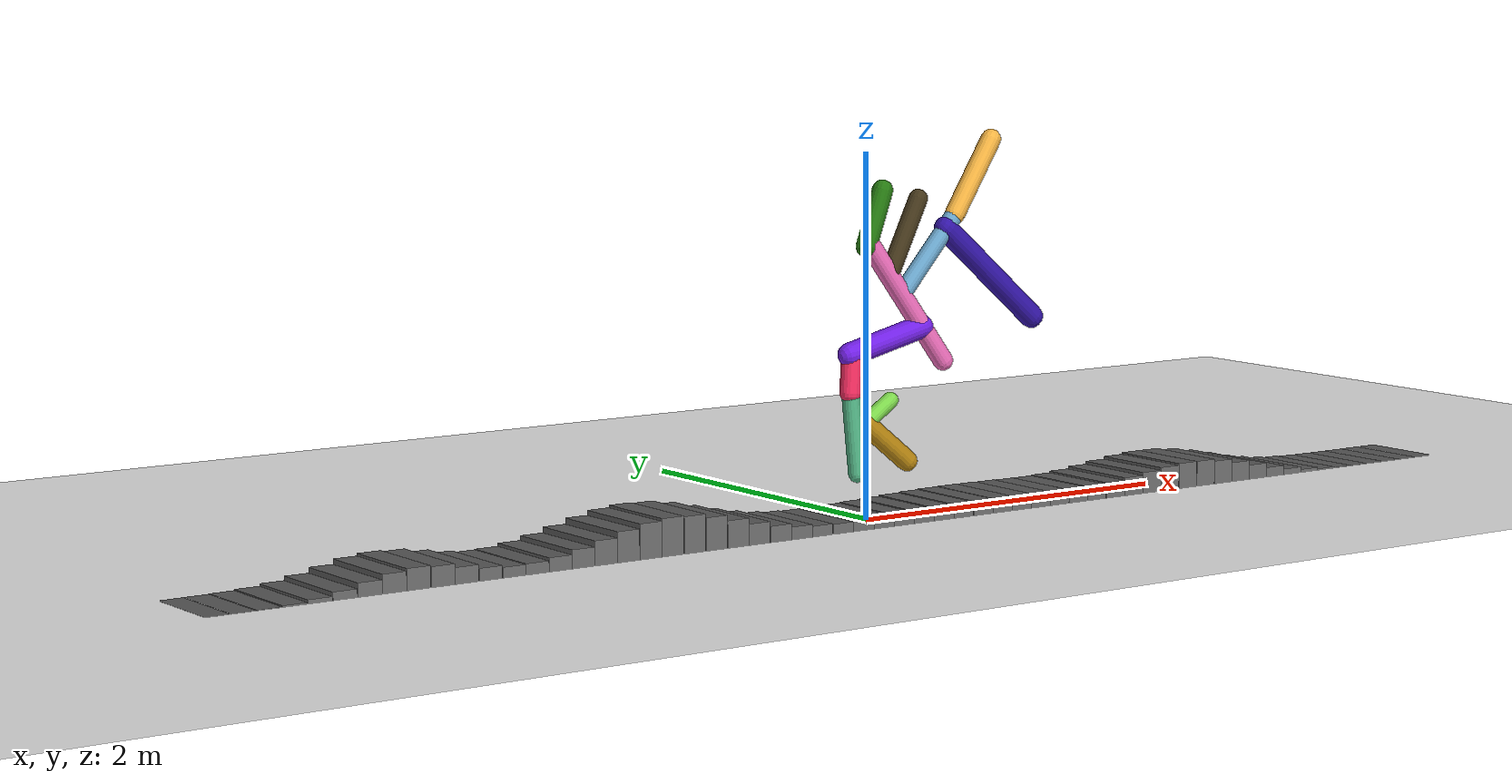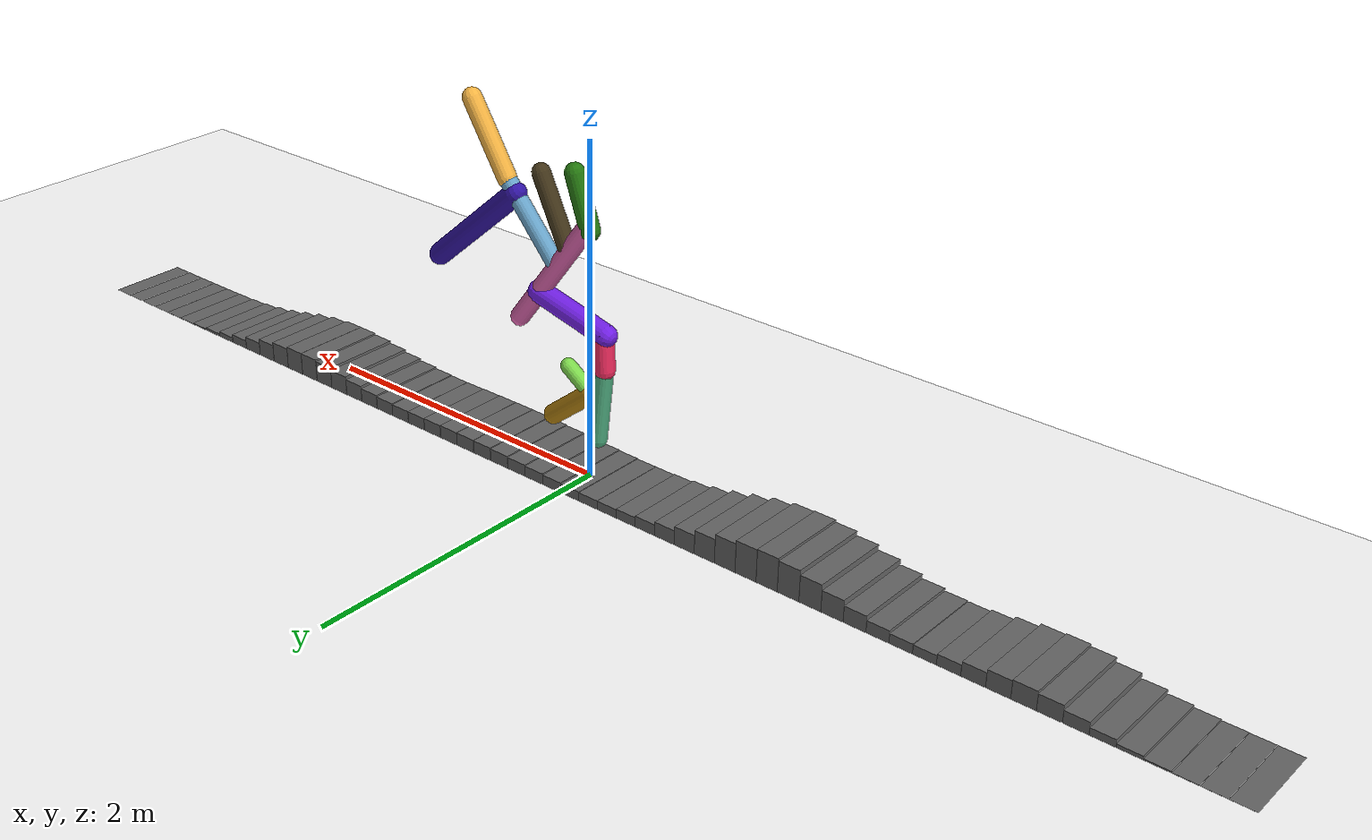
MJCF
<mujoco model="morphology">
  <option timestep="0.01"/>
  <default>
    <default class="/"/>
    <default class="0/"/>
    <default class="0/1/"/>
    <default class="0/1/2/"/>
    <default class="0/1/3/"/>
    <default class="0/1/3/4/"/>
    <default class="0/1/3/5/"/>
    <default class="0/1/6/"/>
    <default class="0/1/6/7/"/>
    <default class="0/1/6/7/8/"/>
    <default class="0/1/6/7/8/9/"/>
    <default class="0/1/6/7/8/9/10/"/>
  </default>
  <asset>
    <texture name="texplane" type="2d" builtin="checker" rgb1="0.10000000000000001 0.20000000000000001 0.29999999999999999" rgb2="0.20000000000000001 0.29999999999999999 0.40000000000000002" width="300" height="300"/>
    <material name="MatPlane" class="/" texture="texplane" texrepeat="20 20" specular="1.0" shininess="1.0" reflectance="0.5"/>
  </asset>
  <worldbody>
    <light name="//unnamed_light_0" class="/" directional="true" pos="0 0 1.5" dir="0 0 -1.3" cutoff="100.0" exponent="1.0" diffuse="1 1 1" specular="0.10000000000000001 0.10000000000000001 0.10000000000000001"/>
    <geom name="ground" class="/" type="plane" size="15 15 0.5" material="MatPlane" rgba="1 1 1 1"/>
    <geom name="terrain0" class="/" type="box" size="0.066666666666666666 0.25 9.4927636727124769e-05" rgba="0.40000000000000002 0.40000000000000002 0.40000000000000002 1" pos="-4 0 9.4927636727124769e-05"/>
    <geom name="terrain1" class="/" type="box" size="0.066666666666666666 0.25 0.00038126380193443781" rgba="0.40000000000000002 0.40000000000000002 0.40000000000000002 1" pos="-3.8644067796610169 0 0.00038126380193443781"/>
    <geom name="terrain2" class="/" type="box" size="0.066666666666666666 0.25 0.0013651614196386642" rgba="0.40000000000000002 0.40000000000000002 0.40000000000000002 1" pos="-3.7288135593220337 0 0.0013651614196386642"/>
    <geom name="terrain3" class="/" type="box" size="0.066666666666666666 0.25 0.0041325080400187704" rgba="0.40000000000000002 0.40000000000000002 0.40000000000000002 1" pos="-3.593220338983051 0 0.0041325080400187704"/>
    <geom name="terrain4" class="/" type="box" size="0.066666666666666666 0.25 0.010348070802014379" rgba="0.40000000000000002 0.40000000000000002 0.40000000000000002 1" pos="-3.4576271186440679 0 0.010348070802014379"/>
    <geom name="terrain5" class="/" type="box" size="0.066666666666666666 0.25 0.021253802310680227" rgba="0.40000000000000002 0.40000000000000002 0.40000000000000002 1" pos="-3.3220338983050848 0 0.021253802310680227"/>
    <geom name="terrain6" class="/" type="box" size="0.066666666666666666 0.25 0.035705981210384409" rgba="0.40000000000000002 0.40000000000000002 0.40000000000000002 1" pos="-3.1864406779661016 0 0.035705981210384409"/>
    <geom name="terrain7" class="/" type="box" size="0.066666666666666666 0.25 0.049093607162200313" rgba="0.40000000000000002 0.40000000000000002 0.40000000000000002 1" pos="-3.0508474576271185 0 0.049093607162200313"/>
    <geom name="terrain8" class="/" type="box" size="0.066666666666666666 0.25 0.05549637422527242" rgba="0.40000000000000002 0.40000000000000002 0.40000000000000002 1" pos="-2.9152542372881358 0 0.05549637422527242"/>
    <geom name="terrain9" class="/" type="box" size="0.066666666666666666 0.25 0.052249639879623701" rgba="0.40000000000000002 0.40000000000000002 0.40000000000000002 1" pos="-2.7796610169491522 0 0.052249639879623701"/>
    <geom name="terrain10" class="/" type="box" size="0.066666666666666666 0.25 0.042407659015549479" rgba="0.40000000000000002 0.40000000000000002 0.40000000000000002 1" pos="-2.6440677966101696 0 0.042407659015549479"/>
    <geom name="terrain11" class="/" type="box" size="0.066666666666666666 0.25 0.032327138873683207" rgba="0.40000000000000002 0.40000000000000002 0.40000000000000002 1" pos="-2.5084745762711864 0 0.032327138873683207"/>
    <geom name="terrain12" class="/" type="box" size="0.066666666666666666 0.25 0.027156030556583746" rgba="0.40000000000000002 0.40000000000000002 0.40000000000000002 1" pos="-2.3728813559322033 0 0.027156030556583746"/>
    <geom name="terrain13" class="/" type="box" size="0.066666666666666666 0.25 0.028696801412685546" rgba="0.40000000000000002 0.40000000000000002 0.40000000000000002 1" pos="-2.2372881355932206 0 0.028696801412685546"/>
    <geom name="terrain14" class="/" type="box" size="0.066666666666666666 0.25 0.036375258301861668" rgba="0.40000000000000002 0.40000000000000002 0.40000000000000002 1" pos="-2.101694915254237 0 0.036375258301861668"/>
    <geom name="terrain15" class="/" type="box" size="0.066666666666666666 0.25 0.048842951862182425" rgba="0.40000000000000002 0.40000000000000002 0.40000000000000002 1" pos="-1.9661016949152543 0 0.048842951862182425"/>
    <geom name="terrain16" class="/" type="box" size="0.066666666666666666 0.25 0.064389424716469051" rgba="0.40000000000000002 0.40000000000000002 0.40000000000000002 1" pos="-1.8305084745762712 0 0.064389424716469051"/>
    <geom name="terrain17" class="/" type="box" size="0.066666666666666666 0.25 0.08046402939919084" rgba="0.40000000000000002 0.40000000000000002 0.40000000000000002 1" pos="-1.6949152542372881 0 0.08046402939919084"/>
    <geom name="terrain18" class="/" type="box" size="0.066666666666666666 0.25 0.093533788087297981" rgba="0.40000000000000002 0.40000000000000002 0.40000000000000002 1" pos="-1.5593220338983049 0 0.093533788087297981"/>
    <geom name="terrain19" class="/" type="box" size="0.066666666666666666 0.25 0.10000000000000001" rgba="0.40000000000000002 0.40000000000000002 0.40000000000000002 1" pos="-1.4237288135593222 0 0.10000000000000001"/>
    <geom name="terrain20" class="/" type="box" size="0.066666666666666666 0.25 0.097809565702307422" rgba="0.40000000000000002 0.40000000000000002 0.40000000000000002 1" pos="-1.2881355932203391 0 0.097809565702307422"/>
    <geom name="terrain21" class="/" type="box" size="0.066666666666666666 0.25 0.087616953771730607" rgba="0.40000000000000002 0.40000000000000002 0.40000000000000002 1" pos="-1.152542372881356 0 0.087616953771730607"/>
    <geom name="terrain22" class="/" type="box" size="0.066666666666666666 0.25 0.072549328343770147" rgba="0.40000000000000002 0.40000000000000002 0.40000000000000002 1" pos="-1.0169491525423728 0 0.072549328343770147"/>
    <geom name="terrain23" class="/" type="box" size="0.066666666666666666 0.25 0.056689074890898764" rgba="0.40000000000000002 0.40000000000000002 0.40000000000000002 1" pos="-0.8813559322033897 0 0.056689074890898764"/>
    <geom name="terrain24" class="/" type="box" size="0.066666666666666666 0.25 0.043333085316772463" rgba="0.40000000000000002 0.40000000000000002 0.40000000000000002 1" pos="-0.74576271186440657 0 0.043333085316772463"/>
    <geom name="terrain25" class="/" type="box" size="0.066666666666666666 0.25 0.03406761269882691" rgba="0.40000000000000002 0.40000000000000002 0.40000000000000002 1" pos="-0.61016949152542388 0 0.03406761269882691"/>
    <geom name="terrain26" class="/" type="box" size="0.066666666666666666 0.25 0.028898933224964576" rgba="0.40000000000000002 0.40000000000000002 0.40000000000000002 1" pos="-0.47457627118644075 0 0.028898933224964576"/>
    <geom name="terrain27" class="/" type="box" size="0.066666666666666666 0.25 0.02696164446024206" rgba="0.40000000000000002 0.40000000000000002 0.40000000000000002 1" pos="-0.33898305084745761 0 0.02696164446024206"/>
    <geom name="terrain28" class="/" type="box" size="0.066666666666666666 0.25 0.027206838846849036" rgba="0.40000000000000002 0.40000000000000002 0.40000000000000002 1" pos="-0.20338983050847448 0 0.027206838846849036"/>
    <geom name="terrain29" class="/" type="box" size="0.066666666666666666 0.25 0.028776676429642007" rgba="0.40000000000000002 0.40000000000000002 0.40000000000000002 1" pos="-0.067796610169491345 0 0.028776676429642007"/>
    <geom name="terrain30" class="/" type="box" size="0.066666666666666666 0.25 0.031082606671439916" rgba="0.40000000000000002 0.40000000000000002 0.40000000000000002 1" pos="0.067796610169491345 0 0.031082606671439916"/>
    <geom name="terrain31" class="/" type="box" size="0.066666666666666666 0.25 0.033725254869113257" rgba="0.40000000000000002 0.40000000000000002 0.40000000000000002 1" pos="0.20338983050847492 0 0.033725254869113257"/>
    <geom name="terrain32" class="/" type="box" size="0.066666666666666666 0.25 0.036377022308784722" rgba="0.40000000000000002 0.40000000000000002 0.40000000000000002 1" pos="0.33898305084745761 0 0.036377022308784722"/>
    <geom name="terrain33" class="/" type="box" size="0.066666666666666666 0.25 0.03870001158149533" rgba="0.40000000000000002 0.40000000000000002 0.40000000000000002 1" pos="0.4745762711864403 0 0.03870001158149533"/>
    <geom name="terrain34" class="/" type="box" size="0.066666666666666666 0.25 0.040337715520321997" rgba="0.40000000000000002 0.40000000000000002 0.40000000000000002 1" pos="0.61016949152542388 0 0.040337715520321997"/>
    <geom name="terrain35" class="/" type="box" size="0.066666666666666666 0.25 0.040993706476980141" rgba="0.40000000000000002 0.40000000000000002 0.40000000000000002 1" pos="0.74576271186440657 0 0.040993706476980141"/>
    <geom name="terrain36" class="/" type="box" size="0.066666666666666666 0.25 0.040579715305346424" rgba="0.40000000000000002 0.40000000000000002 0.40000000000000002 1" pos="0.88135593220339015 0 0.040579715305346424"/>
    <geom name="terrain37" class="/" type="box" size="0.066666666666666666 0.25 0.039375462848010634" rgba="0.40000000000000002 0.40000000000000002 0.40000000000000002 1" pos="1.0169491525423728 0 0.039375462848010634"/>
    <geom name="terrain38" class="/" type="box" size="0.066666666666666666 0.25 0.038105586810940062" rgba="0.40000000000000002 0.40000000000000002 0.40000000000000002 1" pos="1.1525423728813555 0 0.038105586810940062"/>
    <geom name="terrain39" class="/" type="box" size="0.066666666666666666 0.25 0.037834540424447921" rgba="0.40000000000000002 0.40000000000000002 0.40000000000000002 1" pos="1.2881355932203391 0 0.037834540424447921"/>
    <geom name="terrain40" class="/" type="box" size="0.066666666666666666 0.25 0.039642371073211856" rgba="0.40000000000000002 0.40000000000000002 0.40000000000000002 1" pos="1.4237288135593218 0 0.039642371073211856"/>
    <geom name="terrain41" class="/" type="box" size="0.066666666666666666 0.25 0.044168327453589708" rgba="0.40000000000000002 0.40000000000000002 0.40000000000000002 1" pos="1.5593220338983054 0 0.044168327453589708"/>
    <geom name="terrain42" class="/" type="box" size="0.066666666666666666 0.25 0.05121673670567907" rgba="0.40000000000000002 0.40000000000000002 0.40000000000000002 1" pos="1.6949152542372881 0 0.05121673670567907"/>
    <geom name="terrain43" class="/" type="box" size="0.066666666666666666 0.25 0.059611244966457401" rgba="0.40000000000000002 0.40000000000000002 0.40000000000000002 1" pos="1.8305084745762707 0 0.059611244966457401"/>
    <geom name="terrain44" class="/" type="box" size="0.066666666666666666 0.25 0.067366557316932349" rgba="0.40000000000000002 0.40000000000000002 0.40000000000000002 1" pos="1.9661016949152543 0 0.067366557316932349"/>
    <geom name="terrain45" class="/" type="box" size="0.066666666666666666 0.25 0.072148650848288476" rgba="0.40000000000000002 0.40000000000000002 0.40000000000000002 1" pos="2.101694915254237 0 0.072148650848288476"/>
    <geom name="terrain46" class="/" type="box" size="0.066666666666666666 0.25 0.071968904068011194" rgba="0.40000000000000002 0.40000000000000002 0.40000000000000002 1" pos="2.2372881355932206 0 0.071968904068011194"/>
    <geom name="terrain47" class="/" type="box" size="0.066666666666666666 0.25 0.065971248775560501" rgba="0.40000000000000002 0.40000000000000002 0.40000000000000002 1" pos="2.3728813559322033 0 0.065971248775560501"/>
    <geom name="terrain48" class="/" type="box" size="0.066666666666666666 0.25 0.05495786493449744" rgba="0.40000000000000002 0.40000000000000002 0.40000000000000002 1" pos="2.5084745762711869 0 0.05495786493449744"/>
    <geom name="terrain49" class="/" type="box" size="0.066666666666666666 0.25 0.041224201099281134" rgba="0.40000000000000002 0.40000000000000002 0.40000000000000002 1" pos="2.6440677966101696 0 0.041224201099281134"/>
    <geom name="terrain50" class="/" type="box" size="0.066666666666666666 0.25 0.02763585189592533" rgba="0.40000000000000002 0.40000000000000002 0.40000000000000002 1" pos="2.7796610169491522 0 0.02763585189592533"/>
    <geom name="terrain51" class="/" type="box" size="0.066666666666666666 0.25 0.01646118409724465" rgba="0.40000000000000002 0.40000000000000002 0.40000000000000002 1" pos="2.9152542372881358 0 0.01646118409724465"/>
    <geom name="terrain52" class="/" type="box" size="0.066666666666666666 0.25 0.008673801545571699" rgba="0.40000000000000002 0.40000000000000002 0.40000000000000002 1" pos="3.0508474576271185 0 0.008673801545571699"/>
    <geom name="terrain53" class="/" type="box" size="0.066666666666666666 0.25 0.0040300930573957438" rgba="0.40000000000000002 0.40000000000000002 0.40000000000000002 1" pos="3.1864406779661021 0 0.0040300930573957438"/>
    <geom name="terrain54" class="/" type="box" size="0.066666666666666666 0.25 0.0016472624950169064" rgba="0.40000000000000002 0.40000000000000002 0.40000000000000002 1" pos="3.3220338983050848 0 0.0016472624950169064"/>
    <geom name="terrain55" class="/" type="box" size="0.066666666666666666 0.25 0.00059132529165083084" rgba="0.40000000000000002 0.40000000000000002 0.40000000000000002 1" pos="3.4576271186440675 0 0.00059132529165083084"/>
    <geom name="terrain56" class="/" type="box" size="0.066666666666666666 0.25 0.00018620505128557995" rgba="0.40000000000000002 0.40000000000000002 0.40000000000000002 1" pos="3.593220338983051 0 0.00018620505128557995"/>
    <geom name="terrain57" class="/" type="box" size="0.066666666666666666 0.25 5.1392457154675699e-05" rgba="0.40000000000000002 0.40000000000000002 0.40000000000000002 1" pos="3.7288135593220337 0 5.1392457154675699e-05"/>
    <geom name="terrain58" class="/" type="box" size="0.066666666666666666 0.25 1.2425458455688372e-05" rgba="0.40000000000000002 0.40000000000000002 0.40000000000000002 1" pos="3.8644067796610173 0 1.2425458455688372e-05"/>
    <geom name="terrain59" class="/" type="box" size="0.066666666666666666 0.25 2.6308709446004449e-06" rgba="0.40000000000000002 0.40000000000000002 0.40000000000000002 1" pos="4 0 2.6308709446004449e-06"/>
    <site name="body" class="/" size="9.9999999999999995e-07 9.9999999999999995e-07 9.9999999999999995e-07" pos="0 0 1.489284405708313"/>
    <body pos="0 0 1.489284405708313" name="0/">
      <joint name="0/rootx/" class="/" type="slide" axis="1 0 0" stiffness="0.0" armature="0.0" damping="0.0"/>
      <joint name="0/rootz/" class="/" type="slide" axis="0 0 1" stiffness="0.0" armature="0.0" damping="0.0"/>
      <joint name="0/rooty/" class="/" type="hinge" axis="0 1 0" stiffness="0.0" armature="0.0" damping="0.0"/>
      <geom name="0/geom" class="0/" type="capsule" contype="1" conaffinity="1" condim="3" size="0.057574631855701539" rgba="0.14769734868389828 0.47265997302033613 0.064785972761173038 1" friction="0.59999999999999998 0.10000000000000001 0.10000000000000001" fromto="0 0 0 0.10795725198494988 0 0.29875920607121653"/>
      <site name="0/end0" class="0/" size="0.0050000000000000001" pos="0.10795725198494988 0 0.29875920607121653"/>
      <site name="0/attach1" class="0/" size="9.9999999999999995e-07 9.9999999999999995e-07 9.9999999999999995e-07" pos="0.010103876894059428 0 0.027961310459544905"/>
      <body pos="0.010103876894059428 0 0.027961310459544905" name="0/1/">
        <joint name="0/1/joint/" class="0/" type="hinge" axis="0 1 0" limited="true" stiffness="100.0" range="-36.581196790596209 36.581196790596209" armature="0.2" damping="3.5"/>
        <geom name="0/1/geom" class="0/1/" type="capsule" contype="1" conaffinity="1" condim="3" size="0.056029525816455011" rgba="0.92409438783859355 0.42669969654018847 0.727538311890921 1" friction="0.59999999999999998 0.10000000000000001 0.10000000000000001" fromto="0 0 0 0.51219628905384429 0 -0.68675204724076622"/>
        <site name="0/1/end1" class="0/1/" size="0.0050000000000000001" pos="0.51219628905384429 0 -0.68675204724076622"/>
        <site name="0/1/attach2" class="0/1/" size="9.9999999999999995e-07 9.9999999999999995e-07 9.9999999999999995e-07" pos="0.14381850467422483 0 -0.19283164409210846"/>
        <body pos="0.14381850467422483 0 -0.19283164409210846" name="0/1/2/">
          <geom name="0/1/2/geom" class="0/1/2/" type="capsule" contype="1" conaffinity="1" condim="3" size="0.052884565477771546" rgba="0.266057053091038 0.21383281520856456 0.10436365738060494 1" friction="0.59999999999999998 0.10000000000000001 0.10000000000000001" fromto="0 0 0 0.19563090070035161 0 0.40563656954362504"/>
          <site name="0/1/2/end2" class="0/1/2/" size="0.0050000000000000001" pos="0.19563090070035161 0 0.40563656954362504"/>
        </body>
        <site name="0/1/attach3" class="0/1/" size="9.9999999999999995e-07 9.9999999999999995e-07 9.9999999999999995e-07" pos="0.22714920662157281 0 -0.30456132933849128"/>
        <body pos="0.22714920662157281 0 -0.30456132933849128" name="0/1/3/">
          <joint name="0/1/3/joint/" class="0/1/" type="hinge" axis="0 1 0" limited="true" stiffness="100.0" range="-47.186953738260982 47.186953738260982" armature="0.2" damping="3.5"/>
          <geom name="0/1/3/geom" class="0/1/3/" type="capsule" contype="1" conaffinity="1" condim="3" size="0.050971505547805322" rgba="0.40665515361518634 0.63552749046319268 0.78195858749315583 1" friction="0.59999999999999998 0.10000000000000001 0.10000000000000001" fromto="0 0 0 0.36631799716050506 0 0.41931947553414783"/>
          <site name="0/1/3/end3" class="0/1/3/" size="0.0050000000000000001" pos="0.36631799716050506 0 0.41931947553414783"/>
          <site name="0/1/3/attach4" class="0/1/3/" size="9.9999999999999995e-07 9.9999999999999995e-07 9.9999999999999995e-07" pos="0.30179697421337143 0 0.34546309470428527"/>
          <body pos="0.30179697421337143 0 0.34546309470428527" name="0/1/3/4/">
            <joint name="0/1/3/4/joint/" class="0/1/3/" type="hinge" axis="0 1 0" limited="true" stiffness="100.0" range="-50.583397420538631 50.583397420538631" armature="0.2" damping="3.5"/>
            <geom name="0/1/3/4/geom" class="0/1/3/4/" type="capsule" contype="1" conaffinity="1" condim="3" size="0.065121218784336368" rgba="0.19496503300145185 0.078220100631843814 0.64276795431389955 1" friction="0.59999999999999998 0.10000000000000001 0.10000000000000001" fromto="0 0 0 0.60667182501592554 0 -0.52821207365873546"/>
            <site name="0/1/3/4/end4" class="0/1/3/4/" size="0.0050000000000000001" pos="0.60667182501592554 0 -0.52821207365873546"/>
          </body>
          <site name="0/1/3/attach5" class="0/1/3/" size="9.9999999999999995e-07 9.9999999999999995e-07 9.9999999999999995e-07" pos="0.3644573289125515 0 0.41718959264572109"/>
          <body pos="0.3644573289125515 0 0.41718959264572109" name="0/1/3/5/">
            <joint name="0/1/3/5/joint/" class="0/1/3/" type="hinge" axis="0 1 0" limited="true" stiffness="100.0" range="-65.900030930946087 65.900030930946087" armature="0.2" damping="3.5"/>
            <geom name="0/1/3/5/geom" class="0/1/3/5/" type="capsule" contype="1" conaffinity="1" condim="3" size="0.056225328296337779" rgba="0.95028582852928567 0.69947014441526212 0.25848377334871375 1" friction="0.59999999999999998 0.10000000000000001 0.10000000000000001" fromto="0 0 0 0.25031914703149916 0 0.40205987501383555"/>
            <site name="0/1/3/5/end5" class="0/1/3/5/" size="0.0050000000000000001" pos="0.25031914703149916 0 0.40205987501383555"/>
          </body>
        </body>
        <site name="0/1/attach6" class="0/1/" size="9.9999999999999995e-07 9.9999999999999995e-07 9.9999999999999995e-07" pos="0.36467872393421963 0 -0.48896070822693488"/>
        <body pos="0.36467872393421963 0 -0.48896070822693488" name="0/1/6/">
          <joint name="0/1/6/joint/" class="0/1/" type="hinge" axis="0 1 0" limited="true" stiffness="100.0" range="-58.301433025227794 58.301433025227794" armature="0.2" damping="3.5"/>
          <geom name="0/1/6/geom" class="0/1/6/" type="capsule" contype="1" conaffinity="1" condim="3" size="0.064702436060142976" rgba="0.43873558018374637 0.12056519082988126 0.8885807687800964 1" friction="0.59999999999999998 0.10000000000000001 0.10000000000000001" fromto="0 0 0 -0.48818444735020583 0 -0.11719111321926334"/>
          <site name="0/1/6/end6" class="0/1/6/" size="0.0050000000000000001" pos="-0.48818444735020583 0 -0.11719111321926334"/>
          <site name="0/1/6/attach7" class="0/1/6/" size="9.9999999999999995e-07 9.9999999999999995e-07 9.9999999999999995e-07" pos="-0.46946925487457547 0 -0.1126984378539653"/>
          <body pos="-0.46946925487457547 0 -0.1126984378539653" name="0/1/6/7/">
            <joint name="0/1/6/7/joint/" class="0/1/6/" type="hinge" axis="0 1 0" limited="true" stiffness="100.0" range="-47.20102338475678 47.20102338475678" armature="0.2" damping="3.5"/>
            <geom name="0/1/6/7/geom" class="0/1/6/7/" type="capsule" contype="1" conaffinity="1" condim="3" size="0.058796171864646175" rgba="0.95260629454079004 0.17139085873119519 0.37594150371706347 1" friction="0.59999999999999998 0.10000000000000001 0.10000000000000001" fromto="0 0 0 -0.01293442924970889 0 -0.21105081681483051"/>
            <site name="0/1/6/7/end7" class="0/1/6/7/" size="0.0050000000000000001" pos="-0.01293442924970889 0 -0.21105081681483051"/>
            <site name="0/1/6/7/attach8" class="0/1/6/7/" size="9.9999999999999995e-07 9.9999999999999995e-07 9.9999999999999995e-07" pos="-0.01254242534165597 0 -0.20465449708614697"/>
            <body pos="-0.01254242534165597 0 -0.20465449708614697" name="0/1/6/7/8/">
              <joint name="0/1/6/7/8/joint/" class="0/1/6/7/" type="hinge" axis="0 1 0" limited="true" stiffness="100.0" range="-53.730967405264238 53.730967405264238" armature="0.2" damping="3.5"/>
              <geom name="0/1/6/7/8/geom" class="0/1/6/7/8/" type="capsule" contype="1" conaffinity="1" condim="3" size="0.050194451662341495" rgba="0.31725911542696006 0.6960071599292561 0.51394531642556207 1" friction="0.59999999999999998 0.10000000000000001 0.10000000000000001" fromto="0 0 0 0.046561316166253919 0 -0.45093204002963788"/>
              <site name="0/1/6/7/8/end8" class="0/1/6/7/8/" size="0.0050000000000000001" pos="0.046561316166253919 0 -0.45093204002963788"/>
              <site name="0/1/6/7/8/attach9" class="0/1/6/7/8/" size="9.9999999999999995e-07 9.9999999999999995e-07 9.9999999999999995e-07" pos="0.024344464956091875 0 -0.23576866270023542"/>
              <body pos="0.024344464956091875 0 -0.23576866270023542" name="0/1/6/7/8/9/">
                <geom name="0/1/6/7/8/9/geom" class="0/1/6/7/8/9/" type="capsule" contype="1" conaffinity="1" condim="3" size="0.045784776033602877" rgba="0.48185093929262401 0.83111917210247166 0.29041330809283517 1" friction="0.59999999999999998 0.10000000000000001 0.10000000000000001" fromto="0 0 0 0.24342287547190877 0 0.16547016620854416"/>
                <site name="0/1/6/7/8/9/end9" class="0/1/6/7/8/9/" size="0.0050000000000000001" pos="0.24342287547190877 0 0.16547016620854416"/>
                <site name="0/1/6/7/8/9/attach10" class="0/1/6/7/8/9/" size="9.9999999999999995e-07 9.9999999999999995e-07 9.9999999999999995e-07" pos="0.076085848540509218 0 0.051720439090651799"/>
                <body pos="0.076085848540509218 0 0.051720439090651799" name="0/1/6/7/8/9/10/">
                  <geom name="0/1/6/7/8/9/10/geom" class="0/1/6/7/8/9/10/" type="capsule" contype="1" conaffinity="1" condim="3" size="0.057519018438393542" rgba="0.71117426325270261 0.51883307553235314 0.064365165030811466 1" friction="0.59999999999999998 0.10000000000000001 0.10000000000000001" fromto="0 0 0 0.28238954096539448 0 -0.22971461967872531"/>
                  <site name="0/1/6/7/8/9/10/end10" class="0/1/6/7/8/9/10/" size="0.0050000000000000001" pos="0.28238954096539448 0 -0.22971461967872531"/>
                </body>
              </body>
            </body>
          </body>
        </body>
      </body>
      <camera name="0/side" class="0/" mode="trackcom" pos="0.40000000000000002 -4 0.20000000000000001" quat="0.70699999999999996 0.70699999999999996 0 0"/>
    </body>
  </worldbody>
  <actuator>
    <motor name="0/1/motor" class="0/1/" ctrllimited="true" ctrlrange="-1 1" gear="61" joint="0/1/joint/"/>
    <motor name="0/1/3/motor" class="0/1/3/" ctrllimited="true" ctrlrange="-1 1" gear="65" joint="0/1/3/joint/"/>
    <motor name="0/1/3/4/motor" class="0/1/3/4/" ctrllimited="true" ctrlrange="-1 1" gear="56" joint="0/1/3/4/joint/"/>
    <motor name="0/1/3/5/motor" class="0/1/3/5/" ctrllimited="true" ctrlrange="-1 1" gear="80" joint="0/1/3/5/joint/"/>
    <motor name="0/1/6/motor" class="0/1/6/" ctrllimited="true" ctrlrange="-1 1" gear="66" joint="0/1/6/joint/"/>
    <motor name="0/1/6/7/motor" class="0/1/6/7/" ctrllimited="true" ctrlrange="-1 1" gear="62" joint="0/1/6/7/joint/"/>
    <motor name="0/1/6/7/8/motor" class="0/1/6/7/8/" ctrllimited="true" ctrlrange="-1 1" gear="72" joint="0/1/6/7/8/joint/"/>
  </actuator>
  <sensor>
    <subtreelinvel name="velocity" body="0/"/>
  </sensor>
</mujoco>
